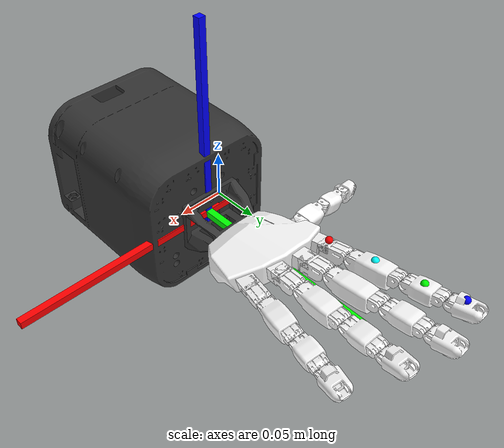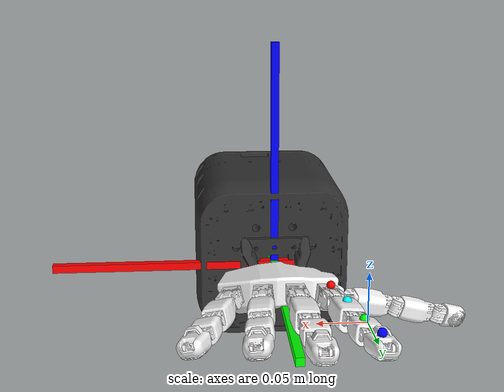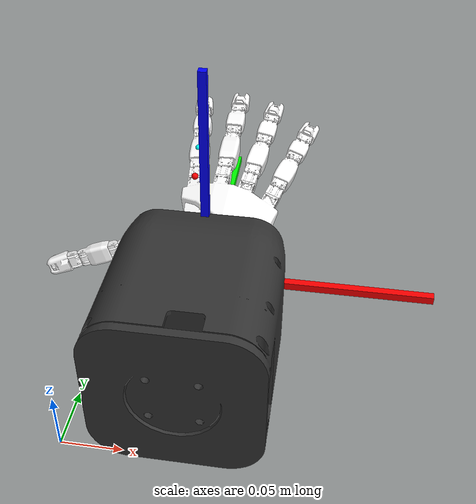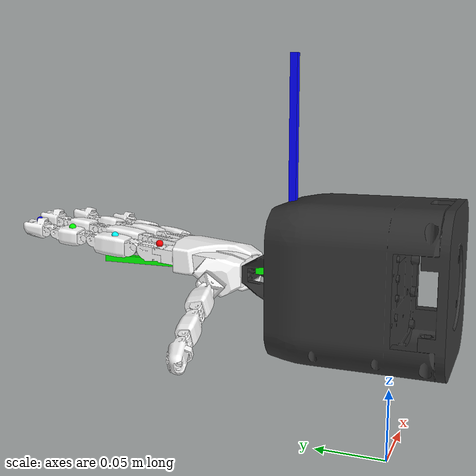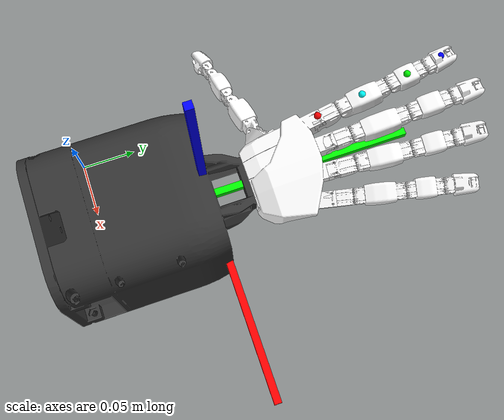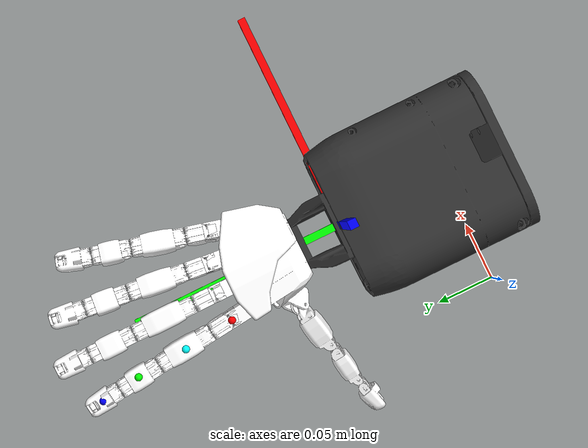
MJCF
<mujoco model="right_faive_modular">
    <compiler angle="radian"/>
    <include file="faive_metadata_IMU.xml"/>
    <worldbody>
        <include file="faive_structure_IMU.xml"/>
        <light pos="1 -1 1.5" dir="-1 1 -1" diffuse="0.5 0.5 0.5" directional="true"/>

    </worldbody>
</mujoco>

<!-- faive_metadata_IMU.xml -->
<mujoco>
    <compiler angle="radian"/>
    <default>
        <!-- use same geom params as the Shadow Hand model in IsaacGymEnv for now -->
        <geom rgba="1 1 1 1" type="mesh" density="662" friction="1 0.005 0.001" condim="3" margin="0.0005" contype="1" conaffinity="1"/>
        <!-- use same joint params as IsaacGymEnv for now -->
        <!-- TODO: joint damping and position control kp should eventually be set to sysID'ed values -->
        <joint type="hinge" limited="true" damping="0.05" armature="0.001" margin="0.01" frictionloss="0.001"/>
        <!-- actuator configuration -->
        <position ctrllimited="true" forcelimited="true" forcerange="-1 1" kp="2."/>
        <!-- the tendon which limits the two joints creating the rolling joint should be very limited in its length range -->
        <tendon limited="true" range="-0.001 0.001"/>
    </default>
    <asset>
        <!-- IsaacGym somehow does not respect the default mesh scale so set each of them manually here... -->
        <mesh name="base" file="mesh/base.stl" scale="0.001 0.001 0.001"/>
        <mesh name="palm" file="mesh/palm.stl" scale="0.001 0.001 0.001"/>
        <mesh name="index_meta" file="mesh/index_meta.stl" scale="0.001 0.001 0.001"/>
        <mesh name="middle_meta" file="mesh/middle_meta.stl" scale="0.001 0.001 0.001"/>
        <mesh name="ring_meta" file="mesh/ring_meta.stl" scale="0.001 0.001 0.001"/>
        <mesh name="pinky_meta" file="mesh/pinky_meta.stl" scale="0.001 0.001 0.001"/>

        <mesh name="thumb_base" file="mesh/thumb_base.stl" scale="0.001 0.001 0.001"/>
        <mesh name="thumb_pp" file="mesh/thumb_pp.stl" scale="0.001 0.001 0.001"/>
        <mesh name="thumb_mp" file="mesh/thumb_mp.stl" scale="0.001 0.001 0.001"/>
        <mesh name="thumb_dp" file="mesh/thumb_dp.stl" scale="0.001 0.001 0.001"/>

        <mesh name="index_pp" file="mesh/index_pp.stl" scale="0.001 0.001 0.001"/>
        <mesh name="index_mp" file="mesh/index_mp.stl" scale="0.001 0.001 0.001"/>
        <mesh name="index_dp" file="mesh/index_dp.stl" scale="0.001 0.001 0.001"/>

        <mesh name="middle_pp" file="mesh/middle_pp.stl" scale="0.001 0.001 0.001"/>
        <mesh name="middle_mp" file="mesh/middle_mp.stl" scale="0.001 0.001 0.001"/>
        <mesh name="middle_dp" file="mesh/middle_dp.stl" scale="0.001 0.001 0.001"/>

        <mesh name="ring_pp" file="mesh/ring_pp.stl" scale="0.001 0.001 0.001"/>
        <mesh name="ring_mp" file="mesh/ring_mp.stl" scale="0.001 0.001 0.001"/>
        <mesh name="ring_dp" file="mesh/ring_dp.stl" scale="0.001 0.001 0.001"/>

        <mesh name="pinky_pp" file="mesh/pinky_pp.stl" scale="0.001 0.001 0.001"/>
        <mesh name="pinky_mp" file="mesh/pinky_mp.stl" scale="0.001 0.001 0.001"/>
        <mesh name="pinky_dp" file="mesh/pinky_dp.stl" scale="0.001 0.001 0.001"/>
    </asset>
    <contact>
        <!-- neighboring bodies are excluded from contact calculation -->
        <exclude body1="palm" body2="thumb_base"/>
        <exclude body1="thumb_base" body2="thumb_pp"/>
        <exclude body1="palm" body2="thumb_pp"/>  <!-- there seems to be somehow unintended collision here -->
        <exclude body1="thumb_pp" body2="thumb_mp"/>
        <exclude body1="thumb_mp" body2="thumb_dp"/>

        <exclude body1="palm" body2="index_pp"/>
        <exclude body1="index_pp" body2="index_mp"/>
        <exclude body1="index_mp" body2="index_dp"/>

        <exclude body1="palm" body2="middle_pp"/>
        <exclude body1="middle_pp" body2="middle_mp"/>
        <exclude body1="middle_mp" body2="middle_dp"/>

        <exclude body1="palm" body2="ring_pp"/>
        <exclude body1="ring_pp" body2="ring_mp"/>
        <exclude body1="ring_mp" body2="ring_dp"/>

        <exclude body1="palm" body2="pinky_pp"/>
        <exclude body1="pinky_pp" body2="pinky_mp"/>
        <exclude body1="pinky_mp" body2="pinky_dp"/>
    </contact>

    <sensor>
        <jointpos name="root2thumb_base" joint="root2thumb_base"/>
        <jointpos name="thumb_base2pp" joint="thumb_base2pp"/>
        <jointpos name="thumb_pp2mp" joint="thumb_pp2mp"/>
        <jointpos name="thumb_mp2dp" joint="thumb_mp2dp"/>

        <jointpos name="root2index_pp" joint="root2index_pp"/>
        <jointpos name="index_pp2mp" joint="index_pp2mp"/>
        <jointpos name="index_mp2dp" joint="index_mp2dp"/>
        <jointpos name="root2index_pp_virt" joint="root2index_pp_virt"/>
        <jointpos name="index_pp2mp_virt" joint="index_pp2mp_virt"/>
        <jointpos name="index_mp2dp_virt" joint="index_mp2dp_virt"/>

        <jointpos name="root2middle_pp" joint="root2middle_pp"/>
        <jointpos name="middle_pp2mp" joint="middle_pp2mp"/>
        <jointpos name="middle_mp2dp" joint="middle_mp2dp"/>

        <jointpos name="root2ring_pp" joint="root2ring_pp"/>
        <jointpos name="ring_pp2mp" joint="ring_pp2mp"/>
        <jointpos name="ring_mp2dp" joint="ring_mp2dp"/>

        <jointpos name="root2pinky_pp" joint="root2pinky_pp"/>
        <jointpos name="pinky_pp2mp" joint="pinky_pp2mp"/>
        <jointpos name="pinky_mp2dp" joint="pinky_mp2dp"/>

        <accelerometer name="acc_index_base" site="index_base_imu"></accelerometer>
        <gyro name="gyr_index_base" site="index_base_imu" ></gyro>
        <magnetometer name="mag_index_base" site="index_base_imu"></magnetometer>

        <accelerometer name="acc_index_pp" site="index_pp_imu"></accelerometer>
        <gyro name="gyr_index_pp" site="index_pp_imu" ></gyro>
        <magnetometer name="mag_index_pp" site="index_pp_imu"></magnetometer>

        <accelerometer name="acc_index_mp" site="index_mp_imu"></accelerometer>
        <gyro name="gyr_index_mp" site="index_mp_imu" ></gyro>
        <magnetometer name="mag_index_mp" site="index_mp_imu"></magnetometer>

        <accelerometer name="acc_index_dp" site="index_dp_imu"></accelerometer>
        <gyro name="gyr_index_dp" site="index_dp_imu" ></gyro>
        <magnetometer name="mag_index_dp" site="index_dp_imu"></magnetometer>

    </sensor>

    <actuator>
        <position name="root2thumb_base" joint="root2thumb_base" ctrlrange="0 2.27" kp="1"/>
        <position name="thumb_base2pp" joint="thumb_base2pp" ctrlrange="-1.66 1.05" kp="1"/>
        <position name="thumb_pp2mp" joint="thumb_pp2mp" ctrlrange="0 0.96" kp="4"/>

        <position name="root2index_pp" joint="root2index_pp" ctrlrange="0 0.83"/>
        <position name="index_pp2mp" joint="index_pp2mp" ctrlrange="0 0.96" kp="4"/>

        <position name="root2middle_pp" joint="root2middle_pp" ctrlrange="0 0.83"/>
        <position name="middle_pp2mp" joint="middle_pp2mp" ctrlrange="0 0.96" kp="4"/>

        <position name="root2ring_pp" joint="root2ring_pp" ctrlrange="0 0.83"/>
        <position name="ring_pp2mp" joint="ring_pp2mp" ctrlrange="0 0.96" kp="4"/>

        <position name="root2pinky_pp" joint="root2pinky_pp" ctrlrange="0 0.83"/>
        <position name="pinky_pp2mp" joint="pinky_pp2mp" ctrlrange="0 0.96" kp="4"/>
    </actuator>

    <!-- the rolling contact joints are modeled by two virtual joints, which have a constraint set here to constrain them to move together -->
    <tendon>
        <!-- Thumb -->
        <fixed name="thumb_pp2mp">
            <joint joint="thumb_pp2mp_virt" coef="1"/>
            <joint joint="thumb_pp2mp" coef="-1"/>
        </fixed>
        <fixed name="thumb_jointlink">
            <joint joint="thumb_pp2mp" coef="0.71"/>
            <joint joint="thumb_mp2dp_virt" coef="-1"/>
        </fixed>
        <fixed name="thumb_mp2dp">
            <joint joint="thumb_mp2dp_virt" coef="1"/>
            <joint joint="thumb_mp2dp" coef="-1"/>
        </fixed>

        <!-- Index finger -->
        <fixed name="root2index_pp">
            <joint joint="root2index_pp_virt" coef="1"/>
            <joint joint="root2index_pp" coef="-1"/>
        </fixed>
        <fixed name="index_pp2mp">
            <joint joint="index_pp2mp_virt" coef="1"/>
            <joint joint="index_pp2mp" coef="-1"/>
        </fixed>
        <fixed name="index_jointlink">
            <joint joint="index_pp2mp" coef="0.71"/>
            <joint joint="index_mp2dp_virt" coef="-1"/>
        </fixed>
        <fixed name="index_mp2dp">
            <joint joint="index_mp2dp_virt" coef="1"/>
            <joint joint="index_mp2dp" coef="-1"/>
        </fixed>
        finger_name
        <!-- Middle finger -->
        <fixed name="root2middle_pp">
            <joint joint="root2middle_pp_virt" coef="1"/>
            <joint joint="root2middle_pp" coef="-1"/>
        </fixed>
        <fixed name="middle_pp2mp">
            <joint joint="middle_pp2mp_virt" coef="1"/>
            <joint joint="middle_pp2mp" coef="-1"/>
        </fixed>
        <fixed name="middle_jointlink">
            <joint joint="middle_pp2mp" coef="0.71"/>
            <joint joint="middle_mp2dp_virt" coef="-1"/>
        </fixed>
        <fixed name="middle_mp2dp">
            <joint joint="middle_mp2dp_virt" coef="1"/>
            <joint joint="middle_mp2dp" coef="-1"/>
        </fixed>

        <!-- Ring finger -->
        <fixed name="root2ring_pp">
            <joint joint="root2ring_pp_virt" coef="1"/>
            <joint joint="root2ring_pp" coef="-1"/>
        </fixed>
        <fixed name="ring_pp2mp">
            <joint joint="ring_pp2mp_virt" coef="1"/>
            <joint joint="ring_pp2mp" coef="-1"/>
        </fixed>
        <fixed name="ring_jointlink">
            <joint joint="ring_pp2mp" coef="0.71"/>
            <joint joint="ring_mp2dp_virt" coef="-1"/>
        </fixed>
        <fixed name="ring_mp2dp">
            <joint joint="ring_mp2dp_virt" coef="1"/>
            <joint joint="ring_mp2dp" coef="-1"/>
        </fixed>

        <!-- Pinky -->
        <fixed name="root2pinky_pp">
            <joint joint="root2pinky_pp_virt" coef="1"/>
            <joint joint="root2pinky_pp" coef="-1"/>
        </fixed>
        <fixed name="pinky_pp2mp">
            <joint joint="pinky_pp2mp_virt" coef="1"/>
            <joint joint="pinky_pp2mp" coef="-1"/>
        </fixed>
        <fixed name="pinky_jointlink">
            <joint joint="pinky_pp2mp" coef="0.71"/>
            <joint joint="pinky_mp2dp_virt" coef="-1"/>
        </fixed>
        <fixed name="pinky_mp2dp">
            <joint joint="pinky_mp2dp_virt" coef="1"/>
            <joint joint="pinky_mp2dp" coef="-1"/>
        </fixed>
    </tendon>
</mujoco>

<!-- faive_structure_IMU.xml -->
<mujoco model="right_faive">

    <body mocap="true" name="root" pos="0.1 0.1 0.1">
        <site pos="0 0 0.075" size="0.003 0.003 0.1" type="box" name="mocap_left_site1" rgba="0 0 1 1"/>
        <site pos="0 0.075 0" size="0.003 0.1 0.003" type="box" name="mocap_left_site2" rgba="0 1 0 1"/>
        <site pos="0.075 0 0" size="0.1 0.003 0.003" type="box" name="mocap_left_site3" rgba="1 0 0 1"/>

        <!-- so that the base can be colored separately in IsaacGym, make it into its own body -->
        <geom mesh="base" rgba="0.2 0.2 0.2 1"/>
        <body name="palm">
            <!-- So that the contact convex hull can be calculated for each distinct component rather than for the entire palm structure, separate it into separate geoms -->
            <geom mesh="palm"/>
            <geom mesh="index_meta"/>
            <geom mesh="middle_meta"/>
            <geom mesh="ring_meta"/>
            <geom mesh="pinky_meta"/>

            <body name="index_base_sens" pos="0 -0.004 0.018"><site name="index_base_imu" pos="-0.029 0.11 0.004" size="0.003" rgba="1 0 0 1"/></body>

            <body name="thumb_base">
                <joint name="root2thumb_base" axis="0.297249628842018  -0.700414486434294  -0.648893061564281" pos="-0.029450000000000   0.061590000000000  -0.006270000000000" range="0 2.27"/>
                <geom mesh="thumb_base"/>
                <body name="thumb_pp">
                    <joint name="thumb_base2pp" axis="-0.088245944430897  -0.696856079647288   0.711761376832230" pos="-0.043710695813146   0.059275370639474  -0.010304234233199" range="-1.66 1.05"/>
                    <geom mesh="thumb_pp" name="thumb_pp"/>
                    <body name="thumb_mp_virt">
                        <joint name="thumb_pp2mp_virt" axis="0.284429826078874  -0.088618171481011  -0.954592318070968" pos="-0.078908   0.047288  -0.017923" range="0 0.96"/>
                        <inertial pos="0 0 0" mass="0.001" diaginertia="4E-10 4E-10 3E-10" />
                        <body name="thumb_mp">
                            <joint name="thumb_pp2mp" axis="0.284429826078874  -0.088618171481011  -0.954592318070968" pos="-0.090266   0.045142  -0.021148" range="0 0.96"/>
                            <geom mesh="thumb_mp" name="thumb_mp"/>
                            <body name="thumb_dp_virt">
                                <joint name="thumb_mp2dp_virt" axis="0.284429826078874  -0.088618171481011  -0.954592318070968" pos="-0.115347   0.040404  -0.028269" range="0 0.68"/>
                                <inertial pos="0 0 0" mass="0.001" diaginertia="4E-10 4E-10 3E-10" />
                                <body name="thumb_dp">
                                    <joint name="thumb_mp2dp" axis="0.284429826078874  -0.088618171481011  -0.954592318070968" pos="-0.123866   0.038794  -0.030687" range="0 0.68"/>
                                    <geom mesh="thumb_dp" name="thumb_dp"/>
                                    <body name="thumb_fingertip" pos="-0.13585	0.0392	-0.0347" euler="4.7 -0.25 2.92">
                                    </body>
                                </body>
                            </body>
                        </body>
                    </body>
                </body>
            </body>

            <body name="index_pp_virt">
                <joint name="root2index_pp_virt" axis="-0.990425994580321  -0.104241812967506  -0.090498583905110" pos="-0.029320000000000   0.115440000000000   0.017930000000000" range="0 0.83"/>
                <inertial pos="0 0 0" mass="0.001" diaginertia="4E-10 4E-10 3E-10" />
                <body name="index_pp">
                    <joint name="root2index_pp" axis="-0.990425994580321  -0.104241812967506  -0.090498583905110" pos="-0.031385146447244   0.133190847457549   0.020084665795489" range="0 0.83"/>
                    <geom mesh="index_pp" name="index_pp"/>
                    <body name="index_pp_sens" pos="0 -0.004 0.018"><site name="index_pp_imu" pos="-0.033 0.15 0.009" size="0.003" rgba="0 1 1 1"/></body>
                    <body name="index_mp_virt">
                        <joint name="index_pp2mp_virt" axis="-0.990425994580321  -0.104241812967506  -0.090498583905110" pos="-0.034941787550830   0.163761751412218   0.023795479109943" range="0 0.96"/>
                        <inertial pos="0 0 0" mass="0.001" diaginertia="4E-10 4E-10 3E-10" />
                        <body name="index_mp">
                            <joint name="index_pp2mp" axis="-0.990425994580321  -0.104241812967506  -0.090498583905110" pos="-0.036318551848992   0.175595649717251   0.025231922973603" range="0 0.96"/>
                            <geom mesh="index_mp" name="index_mp"/>
                            <body name="index_mp_sens" pos="0 -0.004 0.018"><site name="index_mp_imu" pos="-0.036 0.19 0.014" size="0.003" rgba="0 1 0 1"/></body>
                            <body name="index_dp_virt">
                                <joint name="index_mp2dp_virt" axis="-0.990425994580321  -0.104241812967506  -0.090498583905110" pos="-0.039014715266226   0.198770367231273   0.028044958873269" range="0 0.68"/>
                                <inertial pos="0 0 0" mass="0.001" diaginertia="4E-10 4E-10 3E-10" />
                                <body name="index_dp">
                                    <joint name="index_mp2dp" axis="-0.990425994580321  -0.104241812967506  -0.090498583905110" pos="-0.040047288489848   0.207645790960048   0.029122291771014" range="0 0.68"/>
                                    <geom mesh="index_dp" name="index_dp"/>
                                    <body name="index_dp_sens" pos="0 -0.004 0.018"><site name="index_dp_imu" pos="-0.04 0.22 0.019" size="0.003" rgba="0 0 1 1"/></body>
                                    <body name="index_fingertip" pos="-0.0402	0.2175	0.0261" euler="-2.9 0.11 -1.66">
                                    </body>
                                </body>
                            </body>
                        </body>
                    </body>
                </body>
            </body>

            <body name="middle_pp_virt">
                <joint name="root2middle_pp_virt" axis="-1     0     0" pos="-0.005500000000000   0.117620000000000   0.019690000000000" range="0 0.83"/>
                <inertial pos="0 0 0" mass="0.001" diaginertia="4E-10 4E-10 3E-10" />
                <body name="middle_pp">
                    <joint name="root2middle_pp" axis="-1     0     0" pos="-0.005500000000000   0.135485830729544   0.021883648181293" range="0 0.83"/>
                    <geom mesh="middle_pp" name = "middle_pp"/>
                    <body name="middle_mp_virt">
                        <joint name="middle_pp2mp_virt" axis="-1     0     0" pos="-0.005500000000000   0.170224946036990   0.026149075200473" range="0 0.96"/>
                        <inertial pos="0 0 0" mass="0.001" diaginertia="4E-10 4E-10 3E-10" />
                        <body name="middle_mp">
                            <joint name="middle_pp2mp" axis="-1     0     0" pos="-0.005500000000000   0.182135499856686   0.027611507321335" range="0 0.96"/>
                            <geom mesh="middle_mp" name="middle_mp"/>
                            <body name="middle_dp_virt">
                                <joint name="middle_mp2dp_virt" axis="-1     0     0" pos="-0.005500000000000   0.207445426723540   0.030719175578166" range="0 0.68"/>
                                <inertial pos="0 0 0" mass="0.001" diaginertia="4E-10 4E-10 3E-10" />
                                <body name="middle_dp">
                                    <joint name="middle_mp2dp" axis="-1     0     0" pos="-0.005500000000000   0.216378342088312   0.031815999668812" range="0 0.68"/>
                                    <geom mesh="middle_dp" name="middle_dp"/>
                                    <body name="middle_fingertip" pos="-0.0055	0.2251	0.0272" euler="-2.92 0.0 -1.565">
                                    </body>
                                </body>
                            </body>
                        </body>
                    </body>index
                </body>
            </body>

            <body name="ring_pp_virt">
                <joint name="root2ring_pp_virt" axis="-0.990425994580321   0.104241812967506   0.090498583905110" pos="0.018090000000000   0.112480000000000   0.018220000000000" range="0 0.83"/>
                <inertial pos="0 0 0" mass="0.001" diaginertia="4E-10 4E-10 3E-10" />
                <body name="ring_pp">
                    <joint name="root2ring_pp" axis="-0.990425994580321   0.104241812967506   0.090498583905110" pos="0.020155146447243   0.130230847457549   0.020374665795489" range="0 0.83"/>
                    <geom mesh="ring_pp" name="ring_pp"/>
                    <body name="ring_mp_virt">
                        <joint name="ring_pp2mp_virt" axis="-0.990425994580321   0.104241812967506   0.090498583905110" pos="0.023711787550830   0.160801751412218   0.024085479109943" range="0 0.96"/>
                        <inertial pos="0 0 0" mass="0.001" diaginertia="4E-10 4E-10 3E-10" />
                        <body name="ring_mp">
                            <joint name="ring_pp2mp" axis="-0.990425994580321   0.104241812967506   0.090498583905110" pos="0.025088551848992   0.172635649717251   0.025521922973603" range="0 0.96"/>
                            <geom mesh="ring_mp" name="ring_mp"/>
                            <body name="ring_dp_virt">
                                <joint name="ring_mp2dp_virt" axis="-0.990425994580321   0.104241812967506   0.090498583905110" pos="0.027784715266226   0.195810367231273   0.028334958873269" range="0 0.68"/>
                                <inertial pos="0 0 0" mass="0.001" diaginertia="4E-10 4E-10 3E-10" />
                                <body name="ring_dp">
                                    <joint name="ring_mp2dp" axis="-0.990425994580321   0.104241812967506   0.090498583905110" pos="0.028817288489848   0.204685790960048   0.029412291771014" range="0 0.68"/>
                                    <geom mesh="ring_dp" name="ring_dp"/>
                                    <body name="ring_fingertip" pos="0.02695	0.216	0.0244" euler="-2.92 -0.125 -1.425">
                                    </body>
                                </body>
                            </body>
                        </body>
                    </body>
                </body>
            </body>

            <body name="pinky_pp_virt">
                <joint name="root2pinky_pp_virt" axis="-0.950980299137689   0.223061123902897   0.214196651829969" pos="0.041170000000000   0.101870000000000   0.013200000000000" range="0 0.83"/>
                <inertial pos="0 0 0" mass="0.001" diaginertia="4E-10 4E-10 3E-10" />
                <body name="pinky_pp">
                    <joint name="root2pinky_pp" axis="-0.950980299137689   0.223061123902897   0.214196651829969" pos="0.045651869374116   0.119205095457698   0.015045890675491" range="0 0.83"/>
                    <geom mesh="pinky_pp" name="pinky_pp"/>
                    <body name="pinky_mp_virt">
                        <joint name="pinky_pp2mp_virt" axis="-0.950980299137689   0.223061123902897   0.214196651829969" pos="0.052374673435289   0.145207738644245   0.017814726688728" range="0 0.96"/>
                        <inertial pos="0 0 0" mass="0.001" diaginertia="4E-10 4E-10 3E-10" />
                        <body name="pinky_mp">
                            <joint name="pinky_pp2mp" axis="-0.950980299137689   0.223061123902897   0.214196651829969" pos="0.055362586351366   0.156764468949377   0.019045320472388" range="0 0.96"/>
                            <geom mesh="pinky_mp" name="pinky_mp"/>
                            <body name="pinky_dp_virt">
                                <joint name="pinky_mp2dp_virt" axis="-0.950980299137689   0.223061123902897   0.214196651829969" pos="0.060217944839991   0.175544155695216   0.021045035370837" range="0 0.68"/>
                                <inertial pos="0 0 0" mass="0.001" diaginertia="4E-10 4E-10 3E-10" />
                                <body name="pinky_dp">
                                    <joint name="pinky_mp2dp" axis="-0.950980299137689   0.223061123902897   0.214196651829969" pos="0.062458879527049   0.184211703424065   0.021967980708582" range="0 0.68"/>
                                    <geom mesh="pinky_dp" name="pinky_dp"/>
                                    <body name="pinky_fingertip" pos="0.06295	0.1938	0.0186" euler="-2.92 -0.25 -1.3">
                                    </body>
                                </body>
                            </body>
                        </body>
                    </body>
                </body>
            </body>
        </body>
    </body>

</mujoco>
